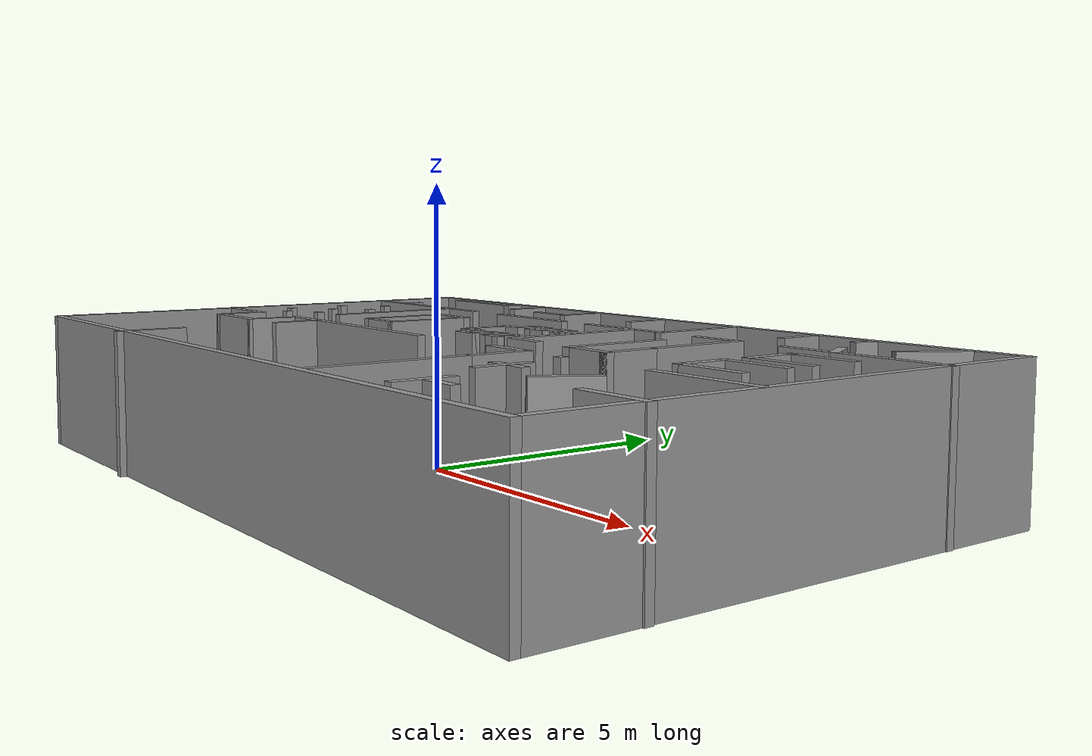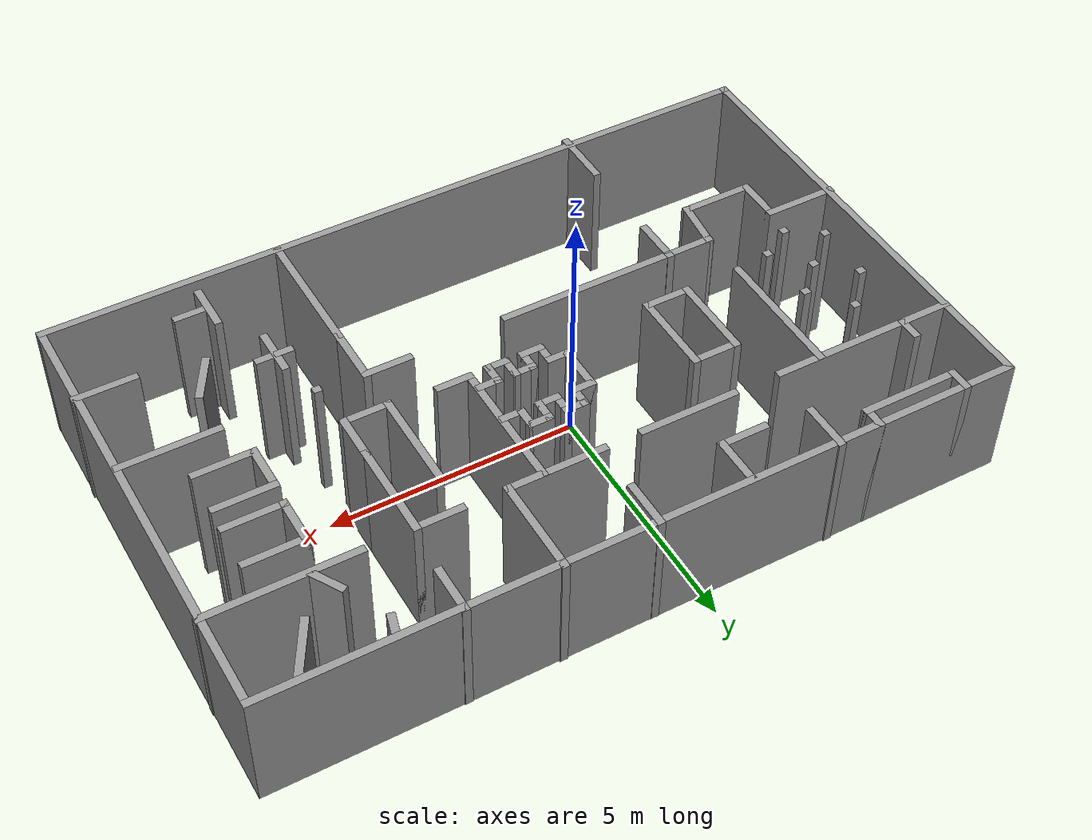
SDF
<?xml version='1.0'?>
<sdf version='1.6'>
  <model name='room2'>
    <pose frame=''>1.03256 -0.106763 0 0 -0 0</pose>
    <link name='Wall_0'>
      <collision name='Wall_0_Collision'>
        <geometry>
          <box>
            <size>14.75 0.15 2.5</size>
          </box>
        </geometry>
        <pose frame=''>0 0 1.25 0 -0 0</pose>
      </collision>
      <visual name='Wall_0_Visual'>
        <pose frame=''>0 0 1.25 0 -0 0</pose>
        <geometry>
          <box>
            <size>14.75 0.15 2.5</size>
          </box>
        </geometry>
        <material>
          <script>
            <uri>file://media/materials/scripts/gazebo.material</uri>
            <name>Gazebo/Grey</name>
          </script>
          <ambient>1 1 1 1</ambient>
        </material>
        <meta>
          <layer>0</layer>
        </meta>
      </visual>
      <pose frame=''>-0.001256 4.59283 0 0 -0 0</pose>
    </link>
    <link name='Wall_1'>
      <collision name='Wall_1_Collision'>
        <geometry>
          <box>
            <size>9.25 0.15 2.5</size>
          </box>
        </geometry>
        <pose frame=''>0 0 1.25 0 -0 0</pose>
      </collision>
      <visual name='Wall_1_Visual'>
        <pose frame=''>0 0 1.25 0 -0 0</pose>
        <geometry>
          <box>
            <size>9.25 0.15 2.5</size>
          </box>
        </geometry>
        <material>
          <script>
            <uri>file://media/materials/scripts/gazebo.material</uri>
            <name>Gazebo/Grey</name>
          </script>
          <ambient>1 1 1 1</ambient>
        </material>
        <meta>
          <layer>0</layer>
        </meta>
      </visual>
      <pose frame=''>7.29874 0.042829 0 0 -0 -1.5708</pose>
    </link>
    <link name='Wall_101'>
      <collision name='Wall_101_Collision'>
        <geometry>
          <box>
            <size>1 0.15 2.5</size>
          </box>
        </geometry>
        <pose frame=''>0 0 1.25 0 -0 0</pose>
      </collision>
      <visual name='Wall_101_Visual'>
        <pose frame=''>0 0 1.25 0 -0 0</pose>
        <geometry>
          <box>
            <size>1 0.15 2.5</size>
          </box>
        </geometry>
        <material>
          <script>
            <uri>file://media/materials/scripts/gazebo.material</uri>
            <name>Gazebo/Grey</name>
          </script>
          <ambient>1 1 1 1</ambient>
        </material>
        <meta>
          <layer>0</layer>
        </meta>
      </visual>
      <pose frame=''>3.83581 -2.06275 0 0 -0 -1.5708</pose>
    </link>
    <link name='Wall_103'>
      <collision name='Wall_103_Collision'>
        <geometry>
          <box>
            <size>1 0.15 2.5</size>
          </box>
        </geometry>
        <pose frame=''>0 0 1.25 0 -0 0</pose>
      </collision>
      <visual name='Wall_103_Visual'>
        <pose frame=''>0 0 1.25 0 -0 0</pose>
        <geometry>
          <box>
            <size>1 0.15 2.5</size>
          </box>
        </geometry>
        <material>
          <script>
            <uri>file://media/materials/scripts/gazebo.material</uri>
            <name>Gazebo/Grey</name>
          </script>
          <ambient>1 1 1 1</ambient>
        </material>
        <meta>
          <layer>0</layer>
        </meta>
      </visual>
      <pose frame=''>5.19987 -2.0852 0 0 -0 -2.0944</pose>
    </link>
    <link name='Wall_105'>
      <collision name='Wall_105_Collision'>
        <geometry>
          <box>
            <size>1 0.15 2.5</size>
          </box>
        </geometry>
        <pose frame=''>0 0 1.25 0 -0 0</pose>
      </collision>
      <visual name='Wall_105_Visual'>
        <pose frame=''>0 0 1.25 0 -0 0</pose>
        <geometry>
          <box>
            <size>1 0.15 2.5</size>
          </box>
        </geometry>
        <material>
          <script>
            <uri>file://media/materials/scripts/gazebo.material</uri>
            <name>Gazebo/Grey</name>
          </script>
          <ambient>1 1 1 1</ambient>
        </material>
        <meta>
          <layer>0</layer>
        </meta>
      </visual>
      <pose frame=''>4.41426 -3.70736 0 0 -0 -1.5708</pose>
    </link>
    <link name='Wall_107'>
      <collision name='Wall_107_Collision'>
        <geometry>
          <box>
            <size>0.75 0.15 2.5</size>
          </box>
        </geometry>
        <pose frame=''>0 0 1.25 0 -0 0</pose>
      </collision>
      <visual name='Wall_107_Visual'>
        <pose frame=''>0 0 1.25 0 -0 0</pose>
        <geometry>
          <box>
            <size>0.75 0.15 2.5</size>
          </box>
        </geometry>
        <material>
          <script>
            <uri>file://media/materials/scripts/gazebo.material</uri>
            <name>Gazebo/Grey</name>
          </script>
          <ambient>1 1 1 1</ambient>
        </material>
        <meta>
          <layer>0</layer>
        </meta>
      </visual>
      <pose frame=''>4.7256 -3.69068 0 0 -0 0</pose>
    </link>
    <link name='Wall_109'>
      <collision name='Wall_109_Collision'>
        <geometry>
          <box>
            <size>1.25 0.15 2.5</size>
          </box>
        </geometry>
        <pose frame=''>0 0 1.25 0 -0 0</pose>
      </collision>
      <visual name='Wall_109_Visual'>
        <pose frame=''>0 0 1.25 0 -0 0</pose>
        <geometry>
          <box>
            <size>1.25 0.15 2.5</size>
          </box>
        </geometry>
        <material>
          <script>
            <uri>file://media/materials/scripts/gazebo.material</uri>
            <name>Gazebo/Grey</name>
          </script>
          <ambient>1 1 1 1</ambient>
        </material>
        <meta>
          <layer>0</layer>
        </meta>
      </visual>
      <pose frame=''>5.7015 2.10516 0 0 -0 0</pose>
    </link>
    <link name='Wall_11'>
      <collision name='Wall_11_Collision'>
        <geometry>
          <box>
            <size>1 0.15 2.5</size>
          </box>
        </geometry>
        <pose frame=''>0 0 1.25 0 -0 0</pose>
      </collision>
      <visual name='Wall_11_Visual'>
        <pose frame=''>0 0 1.25 0 -0 0</pose>
        <geometry>
          <box>
            <size>1 0.15 2.5</size>
          </box>
        </geometry>
        <material>
          <script>
            <uri>file://media/materials/scripts/gazebo.material</uri>
            <name>Gazebo/Grey</name>
          </script>
          <ambient>1 1 1 1</ambient>
        </material>
        <meta>
          <layer>0</layer>
        </meta>
      </visual>
      <pose frame=''>-3.65116 4.19825 0 0 -0 -1.5708</pose>
    </link>
    <link name='Wall_111'>
      <collision name='Wall_111_Collision'>
        <geometry>
          <box>
            <size>1 0.15 2.5</size>
          </box>
        </geometry>
        <pose frame=''>0 0 1.25 0 -0 0</pose>
      </collision>
      <visual name='Wall_111_Visual'>
        <pose frame=''>0 0 1.25 0 -0 0</pose>
        <geometry>
          <box>
            <size>1 0.15 2.5</size>
          </box>
        </geometry>
        <material>
          <script>
            <uri>file://media/materials/scripts/gazebo.material</uri>
            <name>Gazebo/Grey</name>
          </script>
          <ambient>1 1 1 1</ambient>
        </material>
        <meta>
          <layer>0</layer>
        </meta>
      </visual>
      <pose frame=''>5.1515 1.68016 0 0 -0 -1.5708</pose>
    </link>
    <link name='Wall_112'>
      <collision name='Wall_112_Collision'>
        <geometry>
          <box>
            <size>1.25 0.15 2.5</size>
          </box>
        </geometry>
        <pose frame=''>0 0 1.25 0 -0 0</pose>
      </collision>
      <visual name='Wall_112_Visual'>
        <pose frame=''>0 0 1.25 0 -0 0</pose>
        <geometry>
          <box>
            <size>1.25 0.15 2.5</size>
          </box>
        </geometry>
        <material>
          <script>
            <uri>file://media/materials/scripts/gazebo.material</uri>
            <name>Gazebo/Grey</name>
          </script>
          <ambient>1 1 1 1</ambient>
        </material>
        <meta>
          <layer>0</layer>
        </meta>
      </visual>
      <pose frame=''>5.7015 1.25517 0 0 -0 0</pose>
    </link>
    <link name='Wall_114'>
      <collision name='Wall_114_Collision'>
        <geometry>
          <box>
            <size>1.25 0.15 2.5</size>
          </box>
        </geometry>
        <pose frame=''>0 0 1.25 0 -0 0</pose>
      </collision>
      <visual name='Wall_114_Visual'>
        <pose frame=''>0 0 1.25 0 -0 0</pose>
        <geometry>
          <box>
            <size>1.25 0.15 2.5</size>
          </box>
        </geometry>
        <material>
          <script>
            <uri>file://media/materials/scripts/gazebo.material</uri>
            <name>Gazebo/Grey</name>
          </script>
          <ambient>1 1 1 1</ambient>
        </material>
        <meta>
          <layer>0</layer>
        </meta>
      </visual>
      <pose frame=''>5.66766 0.800818 0 0 -0 3.14159</pose>
    </link>
    <link name='Wall_115'>
      <collision name='Wall_115_Collision'>
        <geometry>
          <box>
            <size>1 0.15 2.5</size>
          </box>
        </geometry>
        <pose frame=''>0 0 1.25 0 -0 0</pose>
      </collision>
      <visual name='Wall_115_Visual'>
        <pose frame=''>0 0 1.25 0 -0 0</pose>
        <geometry>
          <box>
            <size>1 0.15 2.5</size>
          </box>
        </geometry>
        <material>
          <script>
            <uri>file://media/materials/scripts/gazebo.material</uri>
            <name>Gazebo/Grey</name>
          </script>
          <ambient>1 1 1 1</ambient>
        </material>
        <meta>
          <layer>0</layer>
        </meta>
      </visual>
      <pose frame=''>5.11766 0.375818 0 0 -0 -1.5708</pose>
    </link>
    <link name='Wall_116'>
      <collision name='Wall_116_Collision'>
        <geometry>
          <box>
            <size>1.25 0.15 2.5</size>
          </box>
        </geometry>
        <pose frame=''>0 0 1.25 0 -0 0</pose>
      </collision>
      <visual name='Wall_116_Visual'>
        <pose frame=''>0 0 1.25 0 -0 0</pose>
        <geometry>
          <box>
            <size>1.25 0.15 2.5</size>
          </box>
        </geometry>
        <material>
          <script>
            <uri>file://media/materials/scripts/gazebo.material</uri>
            <name>Gazebo/Grey</name>
          </script>
          <ambient>1 1 1 1</ambient>
        </material>
        <meta>
          <layer>0</layer>
        </meta>
      </visual>
      <pose frame=''>5.66766 -0.049182 0 0 -0 0</pose>
    </link>
    <link name='Wall_118'>
      <collision name='Wall_118_Collision'>
        <geometry>
          <box>
            <size>0.5 0.15 2.5</size>
          </box>
        </geometry>
        <pose frame=''>0 0 1.25 0 -0 0</pose>
      </collision>
      <visual name='Wall_118_Visual'>
        <pose frame=''>0 0 1.25 0 -0 0</pose>
        <geometry>
          <box>
            <size>0.5 0.15 2.5</size>
          </box>
        </geometry>
        <material>
          <script>
            <uri>file://media/materials/scripts/gazebo.material</uri>
            <name>Gazebo/Grey</name>
          </script>
          <ambient>1 1 1 1</ambient>
        </material>
        <meta>
          <layer>0</layer>
        </meta>
      </visual>
      <pose frame=''>4.69789 4.37469 0 0 -0 -1.8326</pose>
    </link>
    <link name='Wall_121'>
      <collision name='Wall_121_Collision'>
        <geometry>
          <box>
            <size>0.75 0.15 2.5</size>
          </box>
        </geometry>
        <pose frame=''>0 0 1.25 0 -0 0</pose>
      </collision>
      <visual name='Wall_121_Visual'>
        <pose frame=''>0 0 1.25 0 -0 0</pose>
        <geometry>
          <box>
            <size>0.75 0.15 2.5</size>
          </box>
        </geometry>
        <material>
          <script>
            <uri>file://media/materials/scripts/gazebo.material</uri>
            <name>Gazebo/Grey</name>
          </script>
          <ambient>1 1 1 1</ambient>
        </material>
        <meta>
          <layer>0</layer>
        </meta>
      </visual>
      <pose frame=''>5.23969 3.0455 0 0 -0 2.0944</pose>
    </link>
    <link name='Wall_123'>
      <collision name='Wall_123_Collision'>
        <geometry>
          <box>
            <size>1.25 0.15 2.5</size>
          </box>
        </geometry>
        <pose frame=''>0 0 1.25 0 -0 0</pose>
      </collision>
      <visual name='Wall_123_Visual'>
        <pose frame=''>0 0 1.25 0 -0 0</pose>
        <geometry>
          <box>
            <size>1.25 0.15 2.5</size>
          </box>
        </geometry>
        <material>
          <script>
            <uri>file://media/materials/scripts/gazebo.material</uri>
            <name>Gazebo/Grey</name>
          </script>
          <ambient>1 1 1 1</ambient>
        </material>
        <meta>
          <layer>0</layer>
        </meta>
      </visual>
      <pose frame=''>6.14682 4.07876 0 0 -0 -2.0944</pose>
    </link>
    <link name='Wall_127'>
      <collision name='Wall_127_Collision'>
        <geometry>
          <box>
            <size>0.16 0.15 2.5</size>
          </box>
        </geometry>
        <pose frame=''>0 0 1.25 0 -0 0</pose>
      </collision>
      <visual name='Wall_127_Visual'>
        <pose frame=''>0 0 1.25 0 -0 0</pose>
        <geometry>
          <box>
            <size>0.16 0.15 2.5</size>
          </box>
        </geometry>
        <material>
          <script>
            <uri>file://media/materials/scripts/gazebo.material</uri>
            <name>Gazebo/Grey</name>
          </script>
          <ambient>1 1 1 1</ambient>
        </material>
        <meta>
          <layer>0</layer>
        </meta>
      </visual>
      <pose frame=''>-6.50324 1.28853 0 0 -0 0</pose>
    </link>
    <link name='Wall_13'>
      <collision name='Wall_13_Collision'>
        <geometry>
          <box>
            <size>2 0.15 2.5</size>
          </box>
        </geometry>
        <pose frame=''>0 0 1.25 0 -0 0</pose>
      </collision>
      <visual name='Wall_13_Visual'>
        <pose frame=''>0 0 1.25 0 -0 0</pose>
        <geometry>
          <box>
            <size>2 0.15 2.5</size>
          </box>
        </geometry>
        <material>
          <script>
            <uri>file://media/materials/scripts/gazebo.material</uri>
            <name>Gazebo/Grey</name>
          </script>
          <ambient>1 1 1 1</ambient>
        </material>
        <meta>
          <layer>0</layer>
        </meta>
      </visual>
      <pose frame=''>-5.4181 4.24283 0 0 -0 0</pose>
    </link>
    <link name='Wall_131'>
      <collision name='Wall_131_Collision'>
        <geometry>
          <box>
            <size>0.16 0.15 2.5</size>
          </box>
        </geometry>
        <pose frame=''>0 0 1.25 0 -0 0</pose>
      </collision>
      <visual name='Wall_131_Visual'>
        <pose frame=''>0 0 1.25 0 -0 0</pose>
        <geometry>
          <box>
            <size>0.16 0.15 2.5</size>
          </box>
        </geometry>
        <material>
          <script>
            <uri>file://media/materials/scripts/gazebo.material</uri>
            <name>Gazebo/Grey</name>
          </script>
          <ambient>1 1 1 1</ambient>
        </material>
        <meta>
          <layer>0</layer>
        </meta>
      </visual>
      <pose frame=''>-5.28962 1.2545 0 0 -0 0</pose>
    </link>
    <link name='Wall_134'>
      <collision name='Wall_134_Collision'>
        <geometry>
          <box>
            <size>0.16 0.15 2.5</size>
          </box>
        </geometry>
        <pose frame=''>0 0 1.25 0 -0 0</pose>
      </collision>
      <visual name='Wall_134_Visual'>
        <pose frame=''>0 0 1.25 0 -0 0</pose>
        <geometry>
          <box>
            <size>0.16 0.15 2.5</size>
          </box>
        </geometry>
        <material>
          <script>
            <uri>file://media/materials/scripts/gazebo.material</uri>
            <name>Gazebo/Grey</name>
          </script>
          <ambient>1 1 1 1</ambient>
        </material>
        <meta>
          <layer>0</layer>
        </meta>
      </visual>
      <pose frame=''>-5.85673 0.71008 0 0 -0 0</pose>
    </link>
    <link name='Wall_136'>
      <collision name='Wall_136_Collision'>
        <geometry>
          <box>
            <size>0.16 0.15 2.5</size>
          </box>
        </geometry>
        <pose frame=''>0 0 1.25 0 -0 0</pose>
      </collision>
      <visual name='Wall_136_Visual'>
        <pose frame=''>0 0 1.25 0 -0 0</pose>
        <geometry>
          <box>
            <size>0.16 0.15 2.5</size>
          </box>
        </geometry>
        <material>
          <script>
            <uri>file://media/materials/scripts/gazebo.material</uri>
            <name>Gazebo/Grey</name>
          </script>
          <ambient>1 1 1 1</ambient>
        </material>
        <meta>
          <layer>0</layer>
        </meta>
      </visual>
      <pose frame=''>-6.53726 0.108946 0 0 -0 0</pose>
    </link>
    <link name='Wall_138'>
      <collision name='Wall_138_Collision'>
        <geometry>
          <box>
            <size>0.16 0.15 2.5</size>
          </box>
        </geometry>
        <pose frame=''>0 0 1.25 0 -0 0</pose>
      </collision>
      <visual name='Wall_138_Visual'>
        <pose frame=''>0 0 1.25 0 -0 0</pose>
        <geometry>
          <box>
            <size>0.16 0.15 2.5</size>
          </box>
        </geometry>
        <material>
          <script>
            <uri>file://media/materials/scripts/gazebo.material</uri>
            <name>Gazebo/Grey</name>
          </script>
          <ambient>1 1 1 1</ambient>
        </material>
        <meta>
          <layer>0</layer>
        </meta>
      </visual>
      <pose frame=''>-5.26694 0.063578 0 0 -0 0</pose>
    </link>
    <link name='Wall_14'>
      <collision name='Wall_14_Collision'>
        <geometry>
          <box>
            <size>0.5 0.15 2.5</size>
          </box>
        </geometry>
        <pose frame=''>0 0 1.25 0 -0 0</pose>
      </collision>
      <visual name='Wall_14_Visual'>
        <pose frame=''>0 0 1.25 0 -0 0</pose>
        <geometry>
          <box>
            <size>0.5 0.15 2.5</size>
          </box>
        </geometry>
        <material>
          <script>
            <uri>file://media/materials/scripts/gazebo.material</uri>
            <name>Gazebo/Grey</name>
          </script>
          <ambient>1 1 1 1</ambient>
        </material>
        <meta>
          <layer>0</layer>
        </meta>
      </visual>
      <pose frame=''>-4.4931 4.41783 0 0 -0 1.5708</pose>
    </link>
    <link name='Wall_140'>
      <collision name='Wall_140_Collision'>
        <geometry>
          <box>
            <size>0.16 0.15 2.5</size>
          </box>
        </geometry>
        <pose frame=''>0 0 1.25 0 -0 0</pose>
      </collision>
      <visual name='Wall_140_Visual'>
        <pose frame=''>0 0 1.25 0 -0 0</pose>
        <geometry>
          <box>
            <size>0.16 0.15 2.5</size>
          </box>
        </geometry>
        <material>
          <script>
            <uri>file://media/materials/scripts/gazebo.material</uri>
            <name>Gazebo/Grey</name>
          </script>
          <ambient>1 1 1 1</ambient>
        </material>
        <meta>
          <layer>0</layer>
        </meta>
      </visual>
      <pose frame=''>-5.87942 1.9804 0 0 -0 0</pose>
    </link>
    <link name='Wall_142'>
      <collision name='Wall_142_Collision'>
        <geometry>
          <box>
            <size>0.16 0.15 2.5</size>
          </box>
        </geometry>
        <pose frame=''>0 0 1.25 0 -0 0</pose>
      </collision>
      <visual name='Wall_142_Visual'>
        <pose frame=''>0 0 1.25 0 -0 0</pose>
        <geometry>
          <box>
            <size>0.16 0.15 2.5</size>
          </box>
        </geometry>
        <material>
          <script>
            <uri>file://media/materials/scripts/gazebo.material</uri>
            <name>Gazebo/Grey</name>
          </script>
          <ambient>1 1 1 1</ambient>
        </material>
        <meta>
          <layer>0</layer>
        </meta>
      </visual>
      <pose frame=''>-5.89076 -0.322056 0 0 -0 0</pose>
    </link>
    <link name='Wall_19'>
      <collision name='Wall_19_Collision'>
        <geometry>
          <box>
            <size>1 0.15 2.5</size>
          </box>
        </geometry>
        <pose frame=''>0 0 1.25 0 -0 0</pose>
      </collision>
      <visual name='Wall_19_Visual'>
        <pose frame=''>0 0 1.25 0 -0 0</pose>
        <geometry>
          <box>
            <size>1 0.15 2.5</size>
          </box>
        </geometry>
        <material>
          <script>
            <uri>file://media/materials/scripts/gazebo.material</uri>
            <name>Gazebo/Grey</name>
          </script>
          <ambient>1 1 1 1</ambient>
        </material>
        <meta>
          <layer>0</layer>
        </meta>
      </visual>
      <pose frame=''>-2.31105 3.67724 0 0 -0 0</pose>
    </link>
    <link name='Wall_2'>
      <collision name='Wall_2_Collision'>
        <geometry>
          <box>
            <size>14.75 0.15 2.5</size>
          </box>
        </geometry>
        <pose frame=''>0 0 1.25 0 -0 0</pose>
      </collision>
      <visual name='Wall_2_Visual'>
        <pose frame=''>0 0 1.25 0 -0 0</pose>
        <geometry>
          <box>
            <size>14.75 0.15 2.5</size>
          </box>
        </geometry>
        <material>
          <script>
            <uri>file://media/materials/scripts/gazebo.material</uri>
            <name>Gazebo/Grey</name>
          </script>
          <ambient>1 1 1 1</ambient>
        </material>
        <meta>
          <layer>0</layer>
        </meta>
      </visual>
      <pose frame=''>-0.001256 -4.50717 0 0 -0 3.14159</pose>
    </link>
    <link name='Wall_20'>
      <collision name='Wall_20_Collision'>
        <geometry>
          <box>
            <size>1 0.15 2.5</size>
          </box>
        </geometry>
        <pose frame=''>0 0 1.25 0 -0 0</pose>
      </collision>
      <visual name='Wall_20_Visual'>
        <pose frame=''>0 0 1.25 0 -0 0</pose>
        <geometry>
          <box>
            <size>1 0.15 2.5</size>
          </box>
        </geometry>
        <material>
          <script>
            <uri>file://media/materials/scripts/gazebo.material</uri>
            <name>Gazebo/Grey</name>
          </script>
          <ambient>1 1 1 1</ambient>
        </material>
        <meta>
          <layer>0</layer>
        </meta>
      </visual>
      <pose frame=''>-1.88605 4.10224 0 0 -0 1.5708</pose>
    </link>
    <link name='Wall_22'>
      <collision name='Wall_22_Collision'>
        <geometry>
          <box>
            <size>1 0.15 2.5</size>
          </box>
        </geometry>
        <pose frame=''>0 0 1.25 0 -0 0</pose>
      </collision>
      <visual name='Wall_22_Visual'>
        <pose frame=''>0 0 1.25 0 -0 0</pose>
        <geometry>
          <box>
            <size>1 0.15 2.5</size>
          </box>
        </geometry>
        <material>
          <script>
            <uri>file://media/materials/scripts/gazebo.material</uri>
            <name>Gazebo/Grey</name>
          </script>
          <ambient>1 1 1 1</ambient>
        </material>
        <meta>
          <layer>0</layer>
        </meta>
      </visual>
      <pose frame=''>-0.050891 4.17747 0 0 -0 -1.5708</pose>
    </link>
    <link name='Wall_24'>
      <collision name='Wall_24_Collision'>
        <geometry>
          <box>
            <size>2 0.15 2.5</size>
          </box>
        </geometry>
        <pose frame=''>0 0 1.25 0 -0 0</pose>
      </collision>
      <visual name='Wall_24_Visual'>
        <pose frame=''>0 0 1.25 0 -0 0</pose>
        <geometry>
          <box>
            <size>2 0.15 2.5</size>
          </box>
        </geometry>
        <material>
          <script>
            <uri>file://media/materials/scripts/gazebo.material</uri>
            <name>Gazebo/Grey</name>
          </script>
          <ambient>1 1 1 1</ambient>
        </material>
        <meta>
          <layer>0</layer>
        </meta>
      </visual>
      <pose frame=''>0.843939 2.77213 0 0 -0 0</pose>
    </link>
    <link name='Wall_25'>
      <collision name='Wall_25_Collision'>
        <geometry>
          <box>
            <size>2 0.15 2.5</size>
          </box>
        </geometry>
        <pose frame=''>0 0 1.25 0 -0 0</pose>
      </collision>
      <visual name='Wall_25_Visual'>
        <pose frame=''>0 0 1.25 0 -0 0</pose>
        <geometry>
          <box>
            <size>2 0.15 2.5</size>
          </box>
        </geometry>
        <material>
          <script>
            <uri>file://media/materials/scripts/gazebo.material</uri>
            <name>Gazebo/Grey</name>
          </script>
          <ambient>1 1 1 1</ambient>
        </material>
        <meta>
          <layer>0</layer>
        </meta>
      </visual>
      <pose frame=''>1.76894 3.69713 0 0 -0 1.5708</pose>
    </link>
    <link name='Wall_27'>
      <collision name='Wall_27_Collision'>
        <geometry>
          <box>
            <size>1 0.15 2.5</size>
          </box>
        </geometry>
        <pose frame=''>0 0 1.25 0 -0 0</pose>
      </collision>
      <visual name='Wall_27_Visual'>
        <pose frame=''>0 0 1.25 0 -0 0</pose>
        <geometry>
          <box>
            <size>1 0.15 2.5</size>
          </box>
        </geometry>
        <material>
          <script>
            <uri>file://media/materials/scripts/gazebo.material</uri>
            <name>Gazebo/Grey</name>
          </script>
          <ambient>1 1 1 1</ambient>
        </material>
        <meta>
          <layer>0</layer>
        </meta>
      </visual>
      <pose frame=''>3.57686 4.18379 0 0 -0 -1.5708</pose>
    </link>
    <link name='Wall_29'>
      <collision name='Wall_29_Collision'>
        <geometry>
          <box>
            <size>1 0.15 2.5</size>
          </box>
        </geometry>
        <pose frame=''>0 0 1.25 0 -0 0</pose>
      </collision>
      <visual name='Wall_29_Visual'>
        <pose frame=''>0 0 1.25 0 -0 0</pose>
        <geometry>
          <box>
            <size>1 0.15 2.5</size>
          </box>
        </geometry>
        <material>
          <script>
            <uri>file://media/materials/scripts/gazebo.material</uri>
            <name>Gazebo/Grey</name>
          </script>
          <ambient>1 1 1 1</ambient>
        </material>
        <meta>
          <layer>0</layer>
        </meta>
      </visual>
      <pose frame=''>3.06658 2.7684 0 0 -0 0</pose>
    </link>
    <link name='Wall_3'>
      <collision name='Wall_3_Collision'>
        <geometry>
          <box>
            <size>9.25 0.15 2.5</size>
          </box>
        </geometry>
        <pose frame=''>0 0 1.25 0 -0 0</pose>
      </collision>
      <visual name='Wall_3_Visual'>
        <pose frame=''>0 0 1.25 0 -0 0</pose>
        <geometry>
          <box>
            <size>9.25 0.15 2.5</size>
          </box>
        </geometry>
        <material>
          <script>
            <uri>file://media/materials/scripts/gazebo.material</uri>
            <name>Gazebo/Grey</name>
          </script>
          <ambient>1 1 1 1</ambient>
        </material>
        <meta>
          <layer>0</layer>
        </meta>
      </visual>
      <pose frame=''>-7.30126 0.042829 0 0 -0 1.5708</pose>
    </link>
    <link name='Wall_31'>
      <collision name='Wall_31_Collision'>
        <geometry>
          <box>
            <size>3 0.15 2.5</size>
          </box>
        </geometry>
        <pose frame=''>0 0 1.25 0 -0 0</pose>
      </collision>
      <visual name='Wall_31_Visual'>
        <pose frame=''>0 0 1.25 0 -0 0</pose>
        <geometry>
          <box>
            <size>3 0.15 2.5</size>
          </box>
        </geometry>
        <material>
          <script>
            <uri>file://media/materials/scripts/gazebo.material</uri>
            <name>Gazebo/Grey</name>
          </script>
          <ambient>1 1 1 1</ambient>
        </material>
        <meta>
          <layer>0</layer>
        </meta>
      </visual>
      <pose frame=''>5.89169 2.76566 0 0 -0 0</pose>
    </link>
    <link name='Wall_33'>
      <collision name='Wall_33_Collision'>
        <geometry>
          <box>
            <size>2 0.15 2.5</size>
          </box>
        </geometry>
        <pose frame=''>0 0 1.25 0 -0 0</pose>
      </collision>
      <visual name='Wall_33_Visual'>
        <pose frame=''>0 0 1.25 0 -0 0</pose>
        <geometry>
          <box>
            <size>2 0.15 2.5</size>
          </box>
        </geometry>
        <material>
          <script>
            <uri>file://media/materials/scripts/gazebo.material</uri>
            <name>Gazebo/Grey</name>
          </script>
          <ambient>1 1 1 1</ambient>
        </material>
        <meta>
          <layer>0</layer>
        </meta>
      </visual>
      <pose frame=''>3.49158 1.8434 0 0 -0 -1.5708</pose>
    </link>
    <link name='Wall_35'>
      <collision name='Wall_35_Collision'>
        <geometry>
          <box>
            <size>2 0.15 2.5</size>
          </box>
        </geometry>
        <pose frame=''>0 0 1.25 0 -0 0</pose>
      </collision>
      <visual name='Wall_35_Visual'>
        <pose frame=''>0 0 1.25 0 -0 0</pose>
        <geometry>
          <box>
            <size>2 0.15 2.5</size>
          </box>
        </geometry>
        <material>
          <script>
            <uri>file://media/materials/scripts/gazebo.material</uri>
            <name>Gazebo/Grey</name>
          </script>
          <ambient>1 1 1 1</ambient>
        </material>
        <meta>
          <layer>0</layer>
        </meta>
      </visual>
      <pose frame=''>-1.79036 2.76566 0 0 -0 0</pose>
    </link>
    <link name='Wall_37'>
      <collision name='Wall_37_Collision'>
        <geometry>
          <box>
            <size>4.5 0.15 2.5</size>
          </box>
        </geometry>
        <pose frame=''>0 0 1.25 0 -0 0</pose>
      </collision>
      <visual name='Wall_37_Visual'>
        <pose frame=''>0 0 1.25 0 -0 0</pose>
        <geometry>
          <box>
            <size>4.5 0.15 2.5</size>
          </box>
        </geometry>
        <material>
          <script>
            <uri>file://media/materials/scripts/gazebo.material</uri>
            <name>Gazebo/Grey</name>
          </script>
          <ambient>1 1 1 1</ambient>
        </material>
        <meta>
          <layer>0</layer>
        </meta>
      </visual>
      <pose frame=''>-2.34455 -0.81959 0 0 -0 0</pose>
    </link>
    <link name='Wall_39'>
      <collision name='Wall_39_Collision'>
        <geometry>
          <box>
            <size>1.5 0.15 2.5</size>
          </box>
        </geometry>
        <pose frame=''>0 0 1.25 0 -0 0</pose>
      </collision>
      <visual name='Wall_39_Visual'>
        <pose frame=''>0 0 1.25 0 -0 0</pose>
        <geometry>
          <box>
            <size>1.5 0.15 2.5</size>
          </box>
        </geometry>
        <material>
          <script>
            <uri>file://media/materials/scripts/gazebo.material</uri>
            <name>Gazebo/Grey</name>
          </script>
          <ambient>1 1 1 1</ambient>
        </material>
        <meta>
          <layer>0</layer>
        </meta>
      </visual>
      <pose frame=''>-6.65492 -0.877416 0 0 -0 0</pose>
    </link>
    <link name='Wall_40'>
      <collision name='Wall_40_Collision'>
        <geometry>
          <box>
            <size>1 0.15 2.5</size>
          </box>
        </geometry>
        <pose frame=''>0 0 1.25 0 -0 0</pose>
      </collision>
      <visual name='Wall_40_Visual'>
        <pose frame=''>0 0 1.25 0 -0 0</pose>
        <geometry>
          <box>
            <size>1 0.15 2.5</size>
          </box>
        </geometry>
        <material>
          <script>
            <uri>file://media/materials/scripts/gazebo.material</uri>
            <name>Gazebo/Grey</name>
          </script>
          <ambient>1 1 1 1</ambient>
        </material>
        <meta>
          <layer>0</layer>
        </meta>
      </visual>
      <pose frame=''>-5.97992 -1.30242 0 0 -0 -1.5708</pose>
    </link>
    <link name='Wall_41'>
      <collision name='Wall_41_Collision'>
        <geometry>
          <box>
            <size>1.5 0.15 2.5</size>
          </box>
        </geometry>
        <pose frame=''>0 0 1.25 0 -0 0</pose>
      </collision>
      <visual name='Wall_41_Visual'>
        <pose frame=''>0 0 1.25 0 -0 0</pose>
        <geometry>
          <box>
            <size>1.5 0.15 2.5</size>
          </box>
        </geometry>
        <material>
          <script>
            <uri>file://media/materials/scripts/gazebo.material</uri>
            <name>Gazebo/Grey</name>
          </script>
          <ambient>1 1 1 1</ambient>
        </material>
        <meta>
          <layer>0</layer>
        </meta>
      </visual>
      <pose frame=''>-5.30492 -1.72742 0 0 -0 0</pose>
    </link>
    <link name='Wall_43'>
      <collision name='Wall_43_Collision'>
        <geometry>
          <box>
            <size>1.06451 0.15 2.5</size>
          </box>
        </geometry>
        <pose frame=''>0 0 1.25 0 -0 0</pose>
      </collision>
      <visual name='Wall_43_Visual'>
        <pose frame=''>0 0 1.25 0 -0 0</pose>
        <geometry>
          <box>
            <size>1.06451 0.15 2.5</size>
          </box>
        </geometry>
        <material>
          <script>
            <uri>file://media/materials/scripts/gazebo.material</uri>
            <name>Gazebo/Grey</name>
          </script>
          <ambient>1 1 1 1</ambient>
        </material>
        <meta>
          <layer>0</layer>
        </meta>
      </visual>
      <pose frame=''>-4.57473 -1.2735 0 0 -0 1.44982</pose>
    </link>
    <link name='Wall_45'>
      <collision name='Wall_45_Collision'>
        <geometry>
          <box>
            <size>1 0.15 2.5</size>
          </box>
        </geometry>
        <pose frame=''>0 0 1.25 0 -0 0</pose>
      </collision>
      <visual name='Wall_45_Visual'>
        <pose frame=''>0 0 1.25 0 -0 0</pose>
        <geometry>
          <box>
            <size>1 0.15 2.5</size>
          </box>
        </geometry>
        <material>
          <script>
            <uri>file://media/materials/scripts/gazebo.material</uri>
            <name>Gazebo/Grey</name>
          </script>
          <ambient>1 1 1 1</ambient>
        </material>
        <meta>
          <layer>0</layer>
        </meta>
      </visual>
      <pose frame=''>-3.64399 -1.2352 0 0 -0 -1.5708</pose>
    </link>
    <link name='Wall_47'>
      <collision name='Wall_47_Collision'>
        <geometry>
          <box>
            <size>1.25 0.15 2.5</size>
          </box>
        </geometry>
        <pose frame=''>0 0 1.25 0 -0 0</pose>
      </collision>
      <visual name='Wall_47_Visual'>
        <pose frame=''>0 0 1.25 0 -0 0</pose>
        <geometry>
          <box>
            <size>1.25 0.15 2.5</size>
          </box>
        </geometry>
        <material>
          <script>
            <uri>file://media/materials/scripts/gazebo.material</uri>
            <name>Gazebo/Grey</name>
          </script>
          <ambient>1 1 1 1</ambient>
        </material>
        <meta>
          <layer>0</layer>
        </meta>
      </visual>
      <pose frame=''>-3.65704 -4.07325 0 0 -0 -1.5708</pose>
    </link>
    <link name='Wall_49'>
      <collision name='Wall_49_Collision'>
        <geometry>
          <box>
            <size>1.25 0.15 2.5</size>
          </box>
        </geometry>
        <pose frame=''>0 0 1.25 0 -0 0</pose>
      </collision>
      <visual name='Wall_49_Visual'>
        <pose frame=''>0 0 1.25 0 -0 0</pose>
        <geometry>
          <box>
            <size>1.25 0.15 2.5</size>
          </box>
        </geometry>
        <material>
          <script>
            <uri>file://media/materials/scripts/gazebo.material</uri>
            <name>Gazebo/Grey</name>
          </script>
          <ambient>1 1 1 1</ambient>
        </material>
        <meta>
          <layer>0</layer>
        </meta>
      </visual>
      <pose frame=''>2.66905 -1.32107 0 0 -0 -1.5708</pose>
    </link>
    <link name='Wall_5'>
      <collision name='Wall_5_Collision'>
        <geometry>
          <box>
            <size>3.75 0.15 2.5</size>
          </box>
        </geometry>
        <pose frame=''>0 0 1.25 0 -0 0</pose>
      </collision>
      <visual name='Wall_5_Visual'>
        <pose frame=''>0 0 1.25 0 -0 0</pose>
        <geometry>
          <box>
            <size>3.75 0.15 2.5</size>
          </box>
        </geometry>
        <material>
          <script>
            <uri>file://media/materials/scripts/gazebo.material</uri>
            <name>Gazebo/Grey</name>
          </script>
          <ambient>1 1 1 1</ambient>
        </material>
        <meta>
          <layer>0</layer>
        </meta>
      </visual>
      <pose frame=''>-5.50126 2.76778 0 0 -0 0</pose>
    </link>
    <link name='Wall_50'>
      <collision name='Wall_50_Collision'>
        <geometry>
          <box>
            <size>2.75 0.15 2.5</size>
          </box>
        </geometry>
        <pose frame=''>0 0 1.25 0 -0 0</pose>
      </collision>
      <visual name='Wall_50_Visual'>
        <pose frame=''>0 0 1.25 0 -0 0</pose>
        <geometry>
          <box>
            <size>2.75 0.15 2.5</size>
          </box>
        </geometry>
        <material>
          <script>
            <uri>file://media/materials/scripts/gazebo.material</uri>
            <name>Gazebo/Grey</name>
          </script>
          <ambient>1 1 1 1</ambient>
        </material>
        <meta>
          <layer>0</layer>
        </meta>
      </visual>
      <pose frame=''>2.66905 -3.17107 0 0 -0 -1.5708</pose>
    </link>
    <link name='Wall_53'>
      <collision name='Wall_53_Collision'>
        <geometry>
          <box>
            <size>1 0.15 2.5</size>
          </box>
        </geometry>
        <pose frame=''>0 0 1.25 0 -0 0</pose>
      </collision>
      <visual name='Wall_53_Visual'>
        <pose frame=''>0 0 1.25 0 -0 0</pose>
        <geometry>
          <box>
            <size>1 0.15 2.5</size>
          </box>
        </geometry>
        <material>
          <script>
            <uri>file://media/materials/scripts/gazebo.material</uri>
            <name>Gazebo/Grey</name>
          </script>
          <ambient>1 1 1 1</ambient>
        </material>
        <meta>
          <layer>0</layer>
        </meta>
      </visual>
      <pose frame=''>2.24405 -0.771073 0 0 -0 3.14159</pose>
    </link>
    <link name='Wall_55'>
      <collision name='Wall_55_Collision'>
        <geometry>
          <box>
            <size>2.75 0.15 2.5</size>
          </box>
        </geometry>
        <pose frame=''>0 0 1.25 0 -0 0</pose>
      </collision>
      <visual name='Wall_55_Visual'>
        <pose frame=''>0 0 1.25 0 -0 0</pose>
        <geometry>
          <box>
            <size>2.75 0.15 2.5</size>
          </box>
        </geometry>
        <material>
          <script>
            <uri>file://media/materials/scripts/gazebo.material</uri>
            <name>Gazebo/Grey</name>
          </script>
          <ambient>1 1 1 1</ambient>
        </material>
        <meta>
          <layer>0</layer>
        </meta>
      </visual>
      <pose frame=''>-4.54399 1.46371 0 0 -0 -1.5708</pose>
    </link>
    <link name='Wall_57'>
      <collision name='Wall_57_Collision'>
        <geometry>
          <box>
            <size>1 0.15 2.5</size>
          </box>
        </geometry>
        <pose frame=''>0 0 1.25 0 -0 0</pose>
      </collision>
      <visual name='Wall_57_Visual'>
        <pose frame=''>0 0 1.25 0 -0 0</pose>
        <geometry>
          <box>
            <size>1 0.15 2.5</size>
          </box>
        </geometry>
        <material>
          <script>
            <uri>file://media/materials/scripts/gazebo.material</uri>
            <name>Gazebo/Grey</name>
          </script>
          <ambient>1 1 1 1</ambient>
        </material>
        <meta>
          <layer>0</layer>
        </meta>
      </visual>
      <pose frame=''>3.49158 0.493401 0 0 -0 -1.5708</pose>
    </link>
    <link name='Wall_59'>
      <collision name='Wall_59_Collision'>
        <geometry>
          <box>
            <size>0.16 0.15 2.5</size>
          </box>
        </geometry>
        <pose frame=''>0 0 1.25 0 -0 0</pose>
      </collision>
      <visual name='Wall_59_Visual'>
        <pose frame=''>0 0 1.25 0 -0 0</pose>
        <geometry>
          <box>
            <size>0.16 0.15 2.5</size>
          </box>
        </geometry>
        <material>
          <script>
            <uri>file://media/materials/scripts/gazebo.material</uri>
            <name>Gazebo/Grey</name>
          </script>
          <ambient>1 1 1 1</ambient>
        </material>
        <meta>
          <layer>0</layer>
        </meta>
      </visual>
      <pose frame=''>3.57405 -0.849334 0 0 -0 0</pose>
    </link>
    <link name='Wall_61'>
      <collision name='Wall_61_Collision'>
        <geometry>
          <box>
            <size>2 0.15 2.5</size>
          </box>
        </geometry>
        <pose frame=''>0 0 1.25 0 -0 0</pose>
      </collision>
      <visual name='Wall_61_Visual'>
        <pose frame=''>0 0 1.25 0 -0 0</pose>
        <geometry>
          <box>
            <size>2 0.15 2.5</size>
          </box>
        </geometry>
        <material>
          <script>
            <uri>file://media/materials/scripts/gazebo.material</uri>
            <name>Gazebo/Grey</name>
          </script>
          <ambient>1 1 1 1</ambient>
        </material>
        <meta>
          <layer>0</layer>
        </meta>
      </visual>
      <pose frame=''>6.3484 -0.823247 0 0 -0 3.14159</pose>
    </link>
    <link name='Wall_63'>
      <collision name='Wall_63_Collision'>
        <geometry>
          <box>
            <size>1.25 0.15 2.5</size>
          </box>
        </geometry>
        <pose frame=''>0 0 1.25 0 -0 0</pose>
      </collision>
      <visual name='Wall_63_Visual'>
        <pose frame=''>0 0 1.25 0 -0 0</pose>
        <geometry>
          <box>
            <size>1.25 0.15 2.5</size>
          </box>
        </geometry>
        <material>
          <script>
            <uri>file://media/materials/scripts/gazebo.material</uri>
            <name>Gazebo/Grey</name>
          </script>
          <ambient>1 1 1 1</ambient>
        </material>
        <meta>
          <layer>0</layer>
        </meta>
      </visual>
      <pose frame=''>6.77992 -2.68846 0 0 -0 0</pose>
    </link>
    <link name='Wall_65'>
      <collision name='Wall_65_Collision'>
        <geometry>
          <box>
            <size>2.75 0.15 2.5</size>
          </box>
        </geometry>
        <pose frame=''>0 0 1.25 0 -0 0</pose>
      </collision>
      <visual name='Wall_65_Visual'>
        <pose frame=''>0 0 1.25 0 -0 0</pose>
        <geometry>
          <box>
            <size>2.75 0.15 2.5</size>
          </box>
        </geometry>
        <material>
          <script>
            <uri>file://media/materials/scripts/gazebo.material</uri>
            <name>Gazebo/Grey</name>
          </script>
          <ambient>1 1 1 1</ambient>
        </material>
        <meta>
          <layer>0</layer>
        </meta>
      </visual>
      <pose frame=''>1.10383 1.46371 0 0 -0 -1.5708</pose>
    </link>
    <link name='Wall_66'>
      <collision name='Wall_66_Collision'>
        <geometry>
          <box>
            <size>0.75 0.15 2.5</size>
          </box>
        </geometry>
        <pose frame=''>0 0 1.25 0 -0 0</pose>
      </collision>
      <visual name='Wall_66_Visual'>
        <pose frame=''>0 0 1.25 0 -0 0</pose>
        <geometry>
          <box>
            <size>0.75 0.15 2.5</size>
          </box>
        </geometry>
        <material>
          <script>
            <uri>file://media/materials/scripts/gazebo.material</uri>
            <name>Gazebo/Grey</name>
          </script>
          <ambient>1 1 1 1</ambient>
        </material>
        <meta>
          <layer>0</layer>
        </meta>
      </visual>
      <pose frame=''>1.40383 0.163709 0 0 -0 0</pose>
    </link>
    <link name='Wall_68'>
      <collision name='Wall_68_Collision'>
        <geometry>
          <box>
            <size>1 0.15 2.5</size>
          </box>
        </geometry>
        <pose frame=''>0 0 1.25 0 -0 0</pose>
      </collision>
      <visual name='Wall_68_Visual'>
        <pose frame=''>0 0 1.25 0 -0 0</pose>
        <geometry>
          <box>
            <size>1 0.15 2.5</size>
          </box>
        </geometry>
        <material>
          <script>
            <uri>file://media/materials/scripts/gazebo.material</uri>
            <name>Gazebo/Grey</name>
          </script>
          <ambient>1 1 1 1</ambient>
        </material>
        <meta>
          <layer>0</layer>
        </meta>
      </visual>
      <pose frame=''>3.06658 0.068401 0 0 -0 3.14159</pose>
    </link>
    <link name='Wall_69'>
      <collision name='Wall_69_Collision'>
        <geometry>
          <box>
            <size>2 0.15 2.5</size>
          </box>
        </geometry>
        <pose frame=''>0 0 1.25 0 -0 0</pose>
      </collision>
      <visual name='Wall_69_Visual'>
        <pose frame=''>0 0 1.25 0 -0 0</pose>
        <geometry>
          <box>
            <size>2 0.15 2.5</size>
          </box>
        </geometry>
        <material>
          <script>
            <uri>file://media/materials/scripts/gazebo.material</uri>
            <name>Gazebo/Grey</name>
          </script>
          <ambient>1 1 1 1</ambient>
        </material>
        <meta>
          <layer>0</layer>
        </meta>
      </visual>
      <pose frame=''>2.64158 0.993401 0 0 -0 1.5708</pose>
    </link>
    <link name='Wall_7'>
      <collision name='Wall_7_Collision'>
        <geometry>
          <box>
            <size>0.5 0.15 2.5</size>
          </box>
        </geometry>
        <pose frame=''>0 0 1.25 0 -0 0</pose>
      </collision>
      <visual name='Wall_7_Visual'>
        <pose frame=''>0 0 1.25 0 -0 0</pose>
        <geometry>
          <box>
            <size>0.5 0.15 2.5</size>
          </box>
        </geometry>
        <material>
          <script>
            <uri>file://media/materials/scripts/gazebo.material</uri>
            <name>Gazebo/Grey</name>
          </script>
          <ambient>1 1 1 1</ambient>
        </material>
        <meta>
          <layer>0</layer>
        </meta>
      </visual>
      <pose frame=''>-6.34311 4.41783 0 0 -0 -1.5708</pose>
    </link>
    <link name='Wall_71'>
      <collision name='Wall_71_Collision'>
        <geometry>
          <box>
            <size>1.75 0.15 2.5</size>
          </box>
        </geometry>
        <pose frame=''>0 0 1.25 0 -0 0</pose>
      </collision>
      <visual name='Wall_71_Visual'>
        <pose frame=''>0 0 1.25 0 -0 0</pose>
        <geometry>
          <box>
            <size>1.75 0.15 2.5</size>
          </box>
        </geometry>
        <material>
          <script>
            <uri>file://media/materials/scripts/gazebo.material</uri>
            <name>Gazebo/Grey</name>
          </script>
          <ambient>1 1 1 1</ambient>
        </material>
        <meta>
          <layer>0</layer>
        </meta>
      </visual>
      <pose frame=''>-3.42225 0.959362 0 0 -0 -1.5708</pose>
    </link>
    <link name='Wall_72'>
      <collision name='Wall_72_Collision'>
        <geometry>
          <box>
            <size>1 0.15 2.5</size>
          </box>
        </geometry>
        <pose frame=''>0 0 1.25 0 -0 0</pose>
      </collision>
      <visual name='Wall_72_Visual'>
        <pose frame=''>0 0 1.25 0 -0 0</pose>
        <geometry>
          <box>
            <size>1 0.15 2.5</size>
          </box>
        </geometry>
        <material>
          <script>
            <uri>file://media/materials/scripts/gazebo.material</uri>
            <name>Gazebo/Grey</name>
          </script>
          <ambient>1 1 1 1</ambient>
        </material>
        <meta>
          <layer>0</layer>
        </meta>
      </visual>
      <pose frame=''>-2.99726 0.159362 0 0 -0 0</pose>
    </link>
    <link name='Wall_73'>
      <collision name='Wall_73_Collision'>
        <geometry>
          <box>
            <size>1.75 0.15 2.5</size>
          </box>
        </geometry>
        <pose frame=''>0 0 1.25 0 -0 0</pose>
      </collision>
      <visual name='Wall_73_Visual'>
        <pose frame=''>0 0 1.25 0 -0 0</pose>
        <geometry>
          <box>
            <size>1.75 0.15 2.5</size>
          </box>
        </geometry>
        <material>
          <script>
            <uri>file://media/materials/scripts/gazebo.material</uri>
            <name>Gazebo/Grey</name>
          </script>
          <ambient>1 1 1 1</ambient>
        </material>
        <meta>
          <layer>0</layer>
        </meta>
      </visual>
      <pose frame=''>-2.57226 0.959362 0 0 -0 1.5708</pose>
    </link>
    <link name='Wall_74'>
      <collision name='Wall_74_Collision'>
        <geometry>
          <box>
            <size>1 0.15 2.5</size>
          </box>
        </geometry>
        <pose frame=''>0 0 1.25 0 -0 0</pose>
      </collision>
      <visual name='Wall_74_Visual'>
        <pose frame=''>0 0 1.25 0 -0 0</pose>
        <geometry>
          <box>
            <size>1 0.15 2.5</size>
          </box>
        </geometry>
        <material>
          <script>
            <uri>file://media/materials/scripts/gazebo.material</uri>
            <name>Gazebo/Grey</name>
          </script>
          <ambient>1 1 1 1</ambient>
        </material>
        <meta>
          <layer>0</layer>
        </meta>
      </visual>
      <pose frame=''>-2.99726 1.75936 0 0 -0 3.14159</pose>
    </link>
    <link name='Wall_79'>
      <collision name='Wall_79_Collision'>
        <geometry>
          <box>
            <size>0.5 0.15 2.5</size>
          </box>
        </geometry>
        <pose frame=''>0 0 1.25 0 -0 0</pose>
      </collision>
      <visual name='Wall_79_Visual'>
        <pose frame=''>0 0 1.25 0 -0 0</pose>
        <geometry>
          <box>
            <size>0.5 0.15 2.5</size>
          </box>
        </geometry>
        <material>
          <script>
            <uri>file://media/materials/scripts/gazebo.material</uri>
            <name>Gazebo/Grey</name>
          </script>
          <ambient>1 1 1 1</ambient>
        </material>
        <meta>
          <layer>0</layer>
        </meta>
      </visual>
      <pose frame=''>0.893325 1.34524 0 0 -0 3.14159</pose>
    </link>
    <link name='Wall_80'>
      <collision name='Wall_80_Collision'>
        <geometry>
          <box>
            <size>0.5 0.15 2.5</size>
          </box>
        </geometry>
        <pose frame=''>0 0 1.25 0 -0 0</pose>
      </collision>
      <visual name='Wall_80_Visual'>
        <pose frame=''>0 0 1.25 0 -0 0</pose>
        <geometry>
          <box>
            <size>0.5 0.15 2.5</size>
          </box>
        </geometry>
        <material>
          <script>
            <uri>file://media/materials/scripts/gazebo.material</uri>
            <name>Gazebo/Grey</name>
          </script>
          <ambient>1 1 1 1</ambient>
        </material>
        <meta>
          <layer>0</layer>
        </meta>
      </visual>
      <pose frame=''>0.718325 1.52024 0 0 -0 1.5708</pose>
    </link>
    <link name='Wall_81'>
      <collision name='Wall_81_Collision'>
        <geometry>
          <box>
            <size>0.5 0.15 2.5</size>
          </box>
        </geometry>
        <pose frame=''>0 0 1.25 0 -0 0</pose>
      </collision>
      <visual name='Wall_81_Visual'>
        <pose frame=''>0 0 1.25 0 -0 0</pose>
        <geometry>
          <box>
            <size>0.5 0.15 2.5</size>
          </box>
        </geometry>
        <material>
          <script>
            <uri>file://media/materials/scripts/gazebo.material</uri>
            <name>Gazebo/Grey</name>
          </script>
          <ambient>1 1 1 1</ambient>
        </material>
        <meta>
          <layer>0</layer>
        </meta>
      </visual>
      <pose frame=''>0.543325 1.69524 0 0 -0 3.14159</pose>
    </link>
    <link name='Wall_82'>
      <collision name='Wall_82_Collision'>
        <geometry>
          <box>
            <size>0.5 0.15 2.5</size>
          </box>
        </geometry>
        <pose frame=''>0 0 1.25 0 -0 0</pose>
      </collision>
      <visual name='Wall_82_Visual'>
        <pose frame=''>0 0 1.25 0 -0 0</pose>
        <geometry>
          <box>
            <size>0.5 0.15 2.5</size>
          </box>
        </geometry>
        <material>
          <script>
            <uri>file://media/materials/scripts/gazebo.material</uri>
            <name>Gazebo/Grey</name>
          </script>
          <ambient>1 1 1 1</ambient>
        </material>
        <meta>
          <layer>0</layer>
        </meta>
      </visual>
      <pose frame=''>0.368325 1.52024 0 0 -0 -1.5708</pose>
    </link>
    <link name='Wall_83'>
      <collision name='Wall_83_Collision'>
        <geometry>
          <box>
            <size>0.5 0.15 2.5</size>
          </box>
        </geometry>
        <pose frame=''>0 0 1.25 0 -0 0</pose>
      </collision>
      <visual name='Wall_83_Visual'>
        <pose frame=''>0 0 1.25 0 -0 0</pose>
        <geometry>
          <box>
            <size>0.5 0.15 2.5</size>
          </box>
        </geometry>
        <material>
          <script>
            <uri>file://media/materials/scripts/gazebo.material</uri>
            <name>Gazebo/Grey</name>
          </script>
          <ambient>1 1 1 1</ambient>
        </material>
        <meta>
          <layer>0</layer>
        </meta>
      </visual>
      <pose frame=''>0.193325 1.34524 0 0 -0 3.14159</pose>
    </link>
    <link name='Wall_84'>
      <collision name='Wall_84_Collision'>
        <geometry>
          <box>
            <size>0.5 0.15 2.5</size>
          </box>
        </geometry>
        <pose frame=''>0 0 1.25 0 -0 0</pose>
      </collision>
      <visual name='Wall_84_Visual'>
        <pose frame=''>0 0 1.25 0 -0 0</pose>
        <geometry>
          <box>
            <size>0.5 0.15 2.5</size>
          </box>
        </geometry>
        <material>
          <script>
            <uri>file://media/materials/scripts/gazebo.material</uri>
            <name>Gazebo/Grey</name>
          </script>
          <ambient>1 1 1 1</ambient>
        </material>
        <meta>
          <layer>0</layer>
        </meta>
      </visual>
      <pose frame=''>0.018325 1.52024 0 0 -0 1.5708</pose>
    </link>
    <link name='Wall_85'>
      <collision name='Wall_85_Collision'>
        <geometry>
          <box>
            <size>0.5 0.15 2.5</size>
          </box>
        </geometry>
        <pose frame=''>0 0 1.25 0 -0 0</pose>
      </collision>
      <visual name='Wall_85_Visual'>
        <pose frame=''>0 0 1.25 0 -0 0</pose>
        <geometry>
          <box>
            <size>0.5 0.15 2.5</size>
          </box>
        </geometry>
        <material>
          <script>
            <uri>file://media/materials/scripts/gazebo.material</uri>
            <name>Gazebo/Grey</name>
          </script>
          <ambient>1 1 1 1</ambient>
        </material>
        <meta>
          <layer>0</layer>
        </meta>
      </visual>
      <pose frame=''>-0.156675 1.69524 0 0 -0 3.14159</pose>
    </link>
    <link name='Wall_86'>
      <collision name='Wall_86_Collision'>
        <geometry>
          <box>
            <size>0.5 0.15 2.5</size>
          </box>
        </geometry>
        <pose frame=''>0 0 1.25 0 -0 0</pose>
      </collision>
      <visual name='Wall_86_Visual'>
        <pose frame=''>0 0 1.25 0 -0 0</pose>
        <geometry>
          <box>
            <size>0.5 0.15 2.5</size>
          </box>
        </geometry>
        <material>
          <script>
            <uri>file://media/materials/scripts/gazebo.material</uri>
            <name>Gazebo/Grey</name>
          </script>
          <ambient>1 1 1 1</ambient>
        </material>
        <meta>
          <layer>0</layer>
        </meta>
      </visual>
      <pose frame=''>-0.331675 1.52024 0 0 -0 -1.5708</pose>
    </link>
    <link name='Wall_87'>
      <collision name='Wall_87_Collision'>
        <geometry>
          <box>
            <size>0.5 0.15 2.5</size>
          </box>
        </geometry>
        <pose frame=''>0 0 1.25 0 -0 0</pose>
      </collision>
      <visual name='Wall_87_Visual'>
        <pose frame=''>0 0 1.25 0 -0 0</pose>
        <geometry>
          <box>
            <size>0.5 0.15 2.5</size>
          </box>
        </geometry>
        <material>
          <script>
            <uri>file://media/materials/scripts/gazebo.material</uri>
            <name>Gazebo/Grey</name>
          </script>
          <ambient>1 1 1 1</ambient>
        </material>
        <meta>
          <layer>0</layer>
        </meta>
      </visual>
      <pose frame=''>-0.506675 1.34524 0 0 -0 3.14159</pose>
    </link>
    <link name='Wall_88'>
      <collision name='Wall_88_Collision'>
        <geometry>
          <box>
            <size>1 0.15 2.5</size>
          </box>
        </geometry>
        <pose frame=''>0 0 1.25 0 -0 0</pose>
      </collision>
      <visual name='Wall_88_Visual'>
        <pose frame=''>0 0 1.25 0 -0 0</pose>
        <geometry>
          <box>
            <size>1 0.15 2.5</size>
          </box>
        </geometry>
        <material>
          <script>
            <uri>file://media/materials/scripts/gazebo.material</uri>
            <name>Gazebo/Grey</name>
          </script>
          <ambient>1 1 1 1</ambient>
        </material>
        <meta>
          <layer>0</layer>
        </meta>
      </visual>
      <pose frame=''>-0.681675 0.920241 0 0 -0 -1.5708</pose>
    </link>
    <link name='Wall_89'>
      <collision name='Wall_89_Collision'>
        <geometry>
          <box>
            <size>0.5 0.15 2.5</size>
          </box>
        </geometry>
        <pose frame=''>0 0 1.25 0 -0 0</pose>
      </collision>
      <visual name='Wall_89_Visual'>
        <pose frame=''>0 0 1.25 0 -0 0</pose>
        <geometry>
          <box>
            <size>0.5 0.15 2.5</size>
          </box>
        </geometry>
        <material>
          <script>
            <uri>file://media/materials/scripts/gazebo.material</uri>
            <name>Gazebo/Grey</name>
          </script>
          <ambient>1 1 1 1</ambient>
        </material>
        <meta>
          <layer>0</layer>
        </meta>
      </visual>
      <pose frame=''>-0.506675 0.495241 0 0 -0 0</pose>
    </link>
    <link name='Wall_9'>
      <collision name='Wall_9_Collision'>
        <geometry>
          <box>
            <size>0.5 0.15 2.5</size>
          </box>
        </geometry>
        <pose frame=''>0 0 1.25 0 -0 0</pose>
      </collision>
      <visual name='Wall_9_Visual'>
        <pose frame=''>0 0 1.25 0 -0 0</pose>
        <geometry>
          <box>
            <size>0.5 0.15 2.5</size>
          </box>
        </geometry>
        <material>
          <script>
            <uri>file://media/materials/scripts/gazebo.material</uri>
            <name>Gazebo/Grey</name>
          </script>
          <ambient>1 1 1 1</ambient>
        </material>
        <meta>
          <layer>0</layer>
        </meta>
      </visual>
      <pose frame=''>-6.35831 2.95799 0 0 -0 1.5708</pose>
    </link>
    <link name='Wall_90'>
      <collision name='Wall_90_Collision'>
        <geometry>
          <box>
            <size>0.5 0.15 2.5</size>
          </box>
        </geometry>
        <pose frame=''>0 0 1.25 0 -0 0</pose>
      </collision>
      <visual name='Wall_90_Visual'>
        <pose frame=''>0 0 1.25 0 -0 0</pose>
        <geometry>
          <box>
            <size>0.5 0.15 2.5</size>
          </box>
        </geometry>
        <material>
          <script>
            <uri>file://media/materials/scripts/gazebo.material</uri>
            <name>Gazebo/Grey</name>
          </script>
          <ambient>1 1 1 1</ambient>
        </material>
        <meta>
          <layer>0</layer>
        </meta>
      </visual>
      <pose frame=''>-0.331675 0.320241 0 0 -0 -1.5708</pose>
    </link>
    <link name='Wall_91'>
      <collision name='Wall_91_Collision'>
        <geometry>
          <box>
            <size>0.5 0.15 2.5</size>
          </box>
        </geometry>
        <pose frame=''>0 0 1.25 0 -0 0</pose>
      </collision>
      <visual name='Wall_91_Visual'>
        <pose frame=''>0 0 1.25 0 -0 0</pose>
        <geometry>
          <box>
            <size>0.5 0.15 2.5</size>
          </box>
        </geometry>
        <material>
          <script>
            <uri>file://media/materials/scripts/gazebo.material</uri>
            <name>Gazebo/Grey</name>
          </script>
          <ambient>1 1 1 1</ambient>
        </material>
        <meta>
          <layer>0</layer>
        </meta>
      </visual>
      <pose frame=''>-0.156675 0.145241 0 0 -0 0</pose>
    </link>
    <link name='Wall_92'>
      <collision name='Wall_92_Collision'>
        <geometry>
          <box>
            <size>0.5 0.15 2.5</size>
          </box>
        </geometry>
        <pose frame=''>0 0 1.25 0 -0 0</pose>
      </collision>
      <visual name='Wall_92_Visual'>
        <pose frame=''>0 0 1.25 0 -0 0</pose>
        <geometry>
          <box>
            <size>0.5 0.15 2.5</size>
          </box>
        </geometry>
        <material>
          <script>
            <uri>file://media/materials/scripts/gazebo.material</uri>
            <name>Gazebo/Grey</name>
          </script>
          <ambient>1 1 1 1</ambient>
        </material>
        <meta>
          <layer>0</layer>
        </meta>
      </visual>
      <pose frame=''>0.018325 0.320241 0 0 -0 1.5708</pose>
    </link>
    <link name='Wall_93'>
      <collision name='Wall_93_Collision'>
        <geometry>
          <box>
            <size>0.5 0.15 2.5</size>
          </box>
        </geometry>
        <pose frame=''>0 0 1.25 0 -0 0</pose>
      </collision>
      <visual name='Wall_93_Visual'>
        <pose frame=''>0 0 1.25 0 -0 0</pose>
        <geometry>
          <box>
            <size>0.5 0.15 2.5</size>
          </box>
        </geometry>
        <material>
          <script>
            <uri>file://media/materials/scripts/gazebo.material</uri>
            <name>Gazebo/Grey</name>
          </script>
          <ambient>1 1 1 1</ambient>
        </material>
        <meta>
          <layer>0</layer>
        </meta>
      </visual>
      <pose frame=''>0.193325 0.495241 0 0 -0 0</pose>
    </link>
    <link name='Wall_94'>
      <collision name='Wall_94_Collision'>
        <geometry>
          <box>
            <size>0.5 0.15 2.5</size>
          </box>
        </geometry>
        <pose frame=''>0 0 1.25 0 -0 0</pose>
      </collision>
      <visual name='Wall_94_Visual'>
        <pose frame=''>0 0 1.25 0 -0 0</pose>
        <geometry>
          <box>
            <size>0.5 0.15 2.5</size>
          </box>
        </geometry>
        <material>
          <script>
            <uri>file://media/materials/scripts/gazebo.material</uri>
            <name>Gazebo/Grey</name>
          </script>
          <ambient>1 1 1 1</ambient>
        </material>
        <meta>
          <layer>0</layer>
        </meta>
      </visual>
      <pose frame=''>0.368325 0.320241 0 0 -0 -1.5708</pose>
    </link>
    <link name='Wall_95'>
      <collision name='Wall_95_Collision'>
        <geometry>
          <box>
            <size>0.5 0.15 2.5</size>
          </box>
        </geometry>
        <pose frame=''>0 0 1.25 0 -0 0</pose>
      </collision>
      <visual name='Wall_95_Visual'>
        <pose frame=''>0 0 1.25 0 -0 0</pose>
        <geometry>
          <box>
            <size>0.5 0.15 2.5</size>
          </box>
        </geometry>
        <material>
          <script>
            <uri>file://media/materials/scripts/gazebo.material</uri>
            <name>Gazebo/Grey</name>
          </script>
          <ambient>1 1 1 1</ambient>
        </material>
        <meta>
          <layer>0</layer>
        </meta>
      </visual>
      <pose frame=''>0.543325 0.145241 0 0 -0 0</pose>
    </link>
    <link name='Wall_96'>
      <collision name='Wall_96_Collision'>
        <geometry>
          <box>
            <size>0.5 0.15 2.5</size>
          </box>
        </geometry>
        <pose frame=''>0 0 1.25 0 -0 0</pose>
      </collision>
      <visual name='Wall_96_Visual'>
        <pose frame=''>0 0 1.25 0 -0 0</pose>
        <geometry>
          <box>
            <size>0.5 0.15 2.5</size>
          </box>
        </geometry>
        <material>
          <script>
            <uri>file://media/materials/scripts/gazebo.material</uri>
            <name>Gazebo/Grey</name>
          </script>
          <ambient>1 1 1 1</ambient>
        </material>
        <meta>
          <layer>0</layer>
        </meta>
      </visual>
      <pose frame=''>0.718325 0.320241 0 0 -0 1.5708</pose>
    </link>
    <link name='Wall_97'>
      <collision name='Wall_97_Collision'>
        <geometry>
          <box>
            <size>0.5 0.15 2.5</size>
          </box>
        </geometry>
        <pose frame=''>0 0 1.25 0 -0 0</pose>
      </collision>
      <visual name='Wall_97_Visual'>
        <pose frame=''>0 0 1.25 0 -0 0</pose>
        <geometry>
          <box>
            <size>0.5 0.15 2.5</size>
          </box>
        </geometry>
        <material>
          <script>
            <uri>file://media/materials/scripts/gazebo.material</uri>
            <name>Gazebo/Grey</name>
          </script>
          <ambient>1 1 1 1</ambient>
        </material>
        <meta>
          <layer>0</layer>
        </meta>
      </visual>
      <pose frame=''>0.893325 0.495241 0 0 -0 0</pose>
    </link>
    <link name='Wall_99'>
      <collision name='Wall_99_Collision'>
        <geometry>
          <box>
            <size>0.75 0.15 2.5</size>
          </box>
        </geometry>
        <pose frame=''>0 0 1.25 0 -0 0</pose>
      </collision>
      <visual name='Wall_99_Visual'>
        <pose frame=''>0 0 1.25 0 -0 0</pose>
        <geometry>
          <box>
            <size>0.75 0.15 2.5</size>
          </box>
        </geometry>
        <material>
          <script>
            <uri>file://media/materials/scripts/gazebo.material</uri>
            <name>Gazebo/Grey</name>
          </script>
          <ambient>1 1 1 1</ambient>
        </material>
        <meta>
          <layer>0</layer>
        </meta>
      </visual>
      <pose frame=''>3.87494 -1.98935 0 0 -0 0</pose>
    </link>
    <static>1</static>
  </model>
</sdf>
